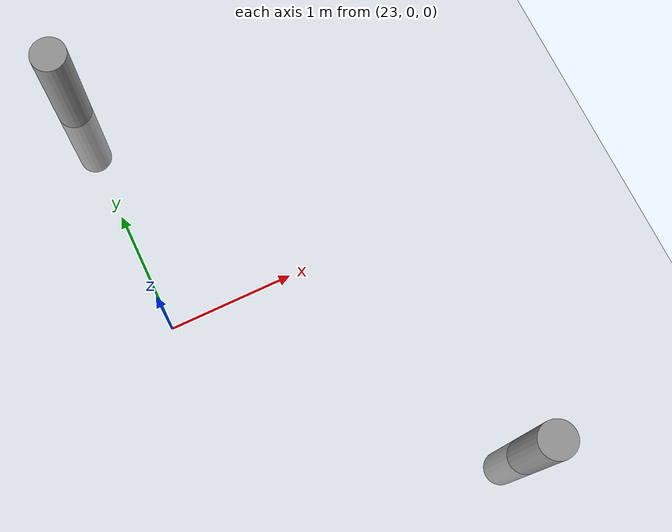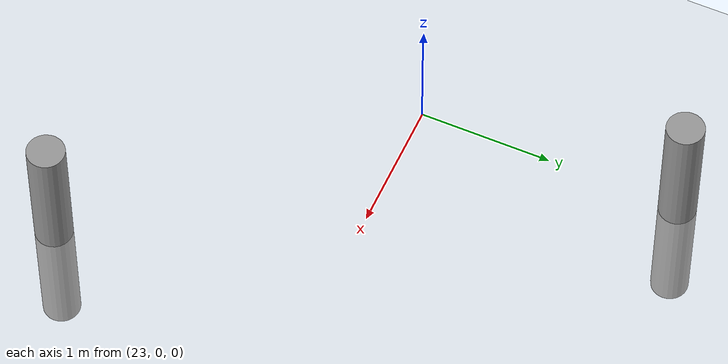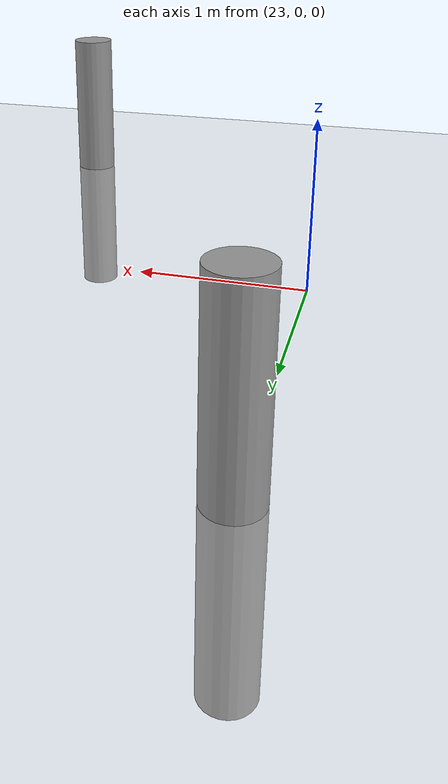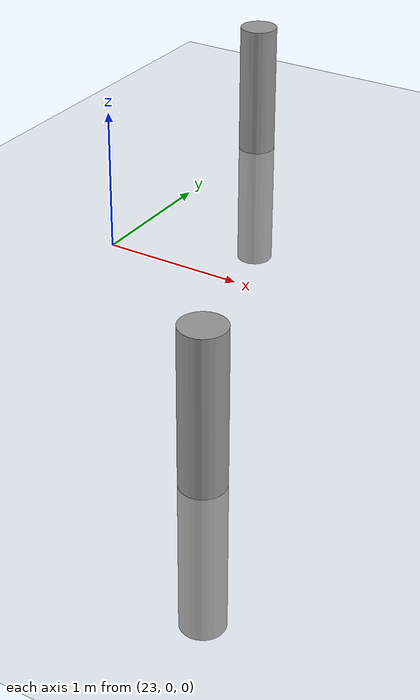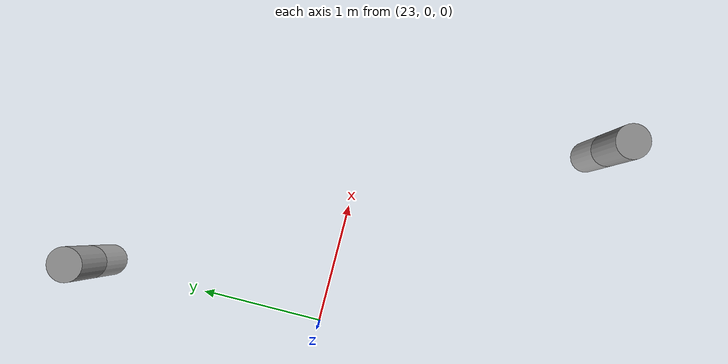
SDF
<sdf version="1.6">
 <world name="default">
  <model name="ground_plane">
   <static>1</static>
   <link name="link">
    <collision name="collision">
     <geometry><plane><normal>0 0 1</normal><size>100 100</size></plane></geometry>
     <surface><friction><ode><mu>100</mu><mu2>50</mu2></ode></friction></surface>
    </collision>
    <visual name="visual">
     <cast_shadows>0</cast_shadows>
     <geometry><plane><normal>0 0 1</normal><size>100 100</size></plane></geometry>
     <material>
      <script><uri>file://media/materials/scripts/gazebo.material</uri><name>Gazebo/Grey</name></script>
     </material>
    </visual>
   </link>
  </model>
  <model name="my_cylinder014_clone_12_0">
   <pose>23 2 0 0 -0 0</pose>
   <link name="my_cylinder014::link">
    <inertial>
     <mass>1</mass>
     <inertia><ixx>0.145833</ixx><ixy>0</ixy><ixz>0</ixz><iyy>0.145833</iyy><iyz>0</iyz><izz>0.125</izz></inertia>
    </inertial>
    <visual name="visual">
     <geometry><cylinder><radius>0.14</radius><length>2</length></cylinder></geometry>
     <material>
      <script><name>Gazebo/Grey</name><uri>file://media/materials/scripts/gazebo.material</uri></script>
      <ambient>0.3 0.3 0.3 1</ambient>
      <diffuse>0.7 0.7 0.7 1</diffuse>
      <specular>1 0.01 0.01 1</specular>
      <emissive>0 0 0 1</emissive>
      <shader type="vertex"><normal_map>__default__</normal_map></shader>
     </material>
    </visual>
    <collision name="collision">
     <geometry><cylinder><radius>0.14</radius><length>2</length></cylinder></geometry>
     <surface>
      <friction>
       <ode><mu>1</mu><mu2>1</mu2><fdir1>0 0 0</fdir1><slip1>0</slip1><slip2>0</slip2></ode>
       <torsional>
        <coefficient>1</coefficient>
        <patch_radius>0</patch_radius>
        <surface_radius>0</surface_radius>
        <use_patch_radius>1</use_patch_radius>
        <ode><slip>0</slip></ode>
       </torsional>
      </friction>
      <bounce><restitution_coefficient>0</restitution_coefficient><threshold>1e+06</threshold></bounce>
      <contact>
       <collide_without_contact>0</collide_without_contact>
       <collide_without_contact_bitmask>1</collide_without_contact_bitmask>
       <collide_bitmask>1</collide_bitmask>
       <ode>
        <soft_cfm>0</soft_cfm>
        <soft_erp>0.2</soft_erp>
        <kp>1e+13</kp>
        <kd>1</kd>
        <max_vel>0.01</max_vel>
        <min_depth>0</min_depth>
       </ode>
       <bullet>
        <split_impulse>1</split_impulse>
        <split_impulse_penetration_threshold>-0.01</split_impulse_penetration_threshold>
        <soft_cfm>0</soft_cfm>
        <soft_erp>0.2</soft_erp>
        <kp>1e+13</kp>
        <kd>1</kd>
       </bullet>
      </contact>
     </surface>
    </collision>
   </link>
   <static>1</static>
  </model>
  <model name="my_cylinder014_clone_12_0">
   <pose>23 2 0 0 -0 0</pose>
   <link name="my_cylinder014::link">
    <inertial>
     <mass>1</mass>
     <inertia><ixx>0.145833</ixx><ixy>0</ixy><ixz>0</ixz><iyy>0.145833</iyy><iyz>0</iyz><izz>0.125</izz></inertia>
    </inertial>
    <visual name="visual">
     <geometry><cylinder><radius>0.14</radius><length>2</length></cylinder></geometry>
     <material>
      <script><name>Gazebo/Grey</name><uri>file://media/materials/scripts/gazebo.material</uri></script>
      <ambient>0.3 0.3 0.3 1</ambient>
      <diffuse>0.7 0.7 0.7 1</diffuse>
      <specular>1 0.01 0.01 1</specular>
      <emissive>0 0 0 1</emissive>
      <shader type="vertex"><normal_map>__default__</normal_map></shader>
     </material>
    </visual>
    <collision name="collision">
     <geometry><cylinder><radius>0.14</radius><length>2</length></cylinder></geometry>
     <surface>
      <friction>
       <ode><mu>1</mu><mu2>1</mu2><fdir1>0 0 0</fdir1><slip1>0</slip1><slip2>0</slip2></ode>
       <torsional>
        <coefficient>1</coefficient>
        <patch_radius>0</patch_radius>
        <surface_radius>0</surface_radius>
        <use_patch_radius>1</use_patch_radius>
        <ode><slip>0</slip></ode>
       </torsional>
      </friction>
      <bounce><restitution_coefficient>0</restitution_coefficient><threshold>1e+06</threshold></bounce>
      <contact>
       <collide_without_contact>0</collide_without_contact>
       <collide_without_contact_bitmask>1</collide_without_contact_bitmask>
       <collide_bitmask>1</collide_bitmask>
       <ode>
        <soft_cfm>0</soft_cfm>
        <soft_erp>0.2</soft_erp>
        <kp>1e+13</kp>
        <kd>1</kd>
        <max_vel>0.01</max_vel>
        <min_depth>0</min_depth>
       </ode>
       <bullet>
        <split_impulse>1</split_impulse>
        <split_impulse_penetration_threshold>-0.01</split_impulse_penetration_threshold>
        <soft_cfm>0</soft_cfm>
        <soft_erp>0.2</soft_erp>
        <kp>1e+13</kp>
        <kd>1</kd>
       </bullet>
      </contact>
     </surface>
    </collision>
   </link>
   <static>1</static>
  </model>
  <model name="my_cylinder014_clone_10_1">
   <pose>25 -2 0 0 -0 0</pose>
   <link name="my_cylinder014::link">
    <inertial>
     <mass>1</mass>
     <inertia><ixx>0.145833</ixx><ixy>0</ixy><ixz>0</ixz><iyy>0.145833</iyy><iyz>0</iyz><izz>0.125</izz></inertia>
    </inertial>
    <visual name="visual">
     <geometry><cylinder><radius>0.14</radius><length>2</length></cylinder></geometry>
     <material>
      <script><name>Gazebo/Grey</name><uri>file://media/materials/scripts/gazebo.material</uri></script>
      <ambient>0.3 0.3 0.3 1</ambient>
      <diffuse>0.7 0.7 0.7 1</diffuse>
      <specular>1 0.01 0.01 1</specular>
      <emissive>0 0 0 1</emissive>
      <shader type="vertex"><normal_map>__default__</normal_map></shader>
     </material>
    </visual>
    <collision name="collision">
     <geometry><cylinder><radius>0.14</radius><length>2</length></cylinder></geometry>
     <surface>
      <friction>
       <ode><mu>1</mu><mu2>1</mu2><fdir1>0 0 0</fdir1><slip1>0</slip1><slip2>0</slip2></ode>
       <torsional>
        <coefficient>1</coefficient>
        <patch_radius>0</patch_radius>
        <surface_radius>0</surface_radius>
        <use_patch_radius>1</use_patch_radius>
        <ode><slip>0</slip></ode>
       </torsional>
      </friction>
      <bounce><restitution_coefficient>0</restitution_coefficient><threshold>1e+06</threshold></bounce>
      <contact>
       <collide_without_contact>0</collide_without_contact>
       <collide_without_contact_bitmask>1</collide_without_contact_bitmask>
       <collide_bitmask>1</collide_bitmask>
       <ode>
        <soft_cfm>0</soft_cfm>
        <soft_erp>0.2</soft_erp>
        <kp>1e+13</kp>
        <kd>1</kd>
        <max_vel>0.01</max_vel>
        <min_depth>0</min_depth>
       </ode>
       <bullet>
        <split_impulse>1</split_impulse>
        <split_impulse_penetration_threshold>-0.01</split_impulse_penetration_threshold>
        <soft_cfm>0</soft_cfm>
        <soft_erp>0.2</soft_erp>
        <kp>1e+13</kp>
        <kd>1</kd>
       </bullet>
      </contact>
     </surface>
    </collision>
   </link>
   <static>1</static>
  </model>
 </world>
</sdf>
